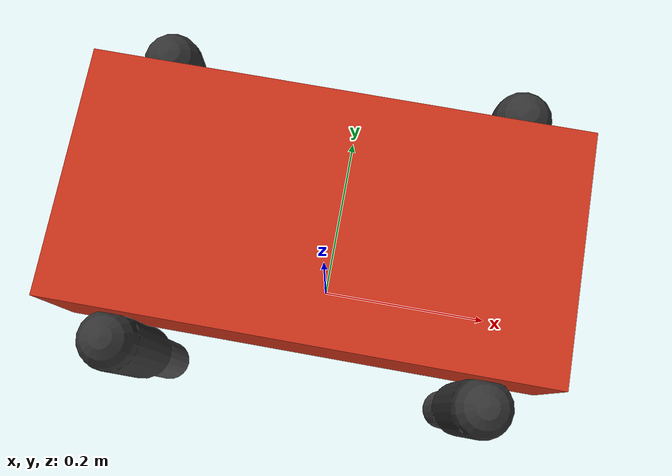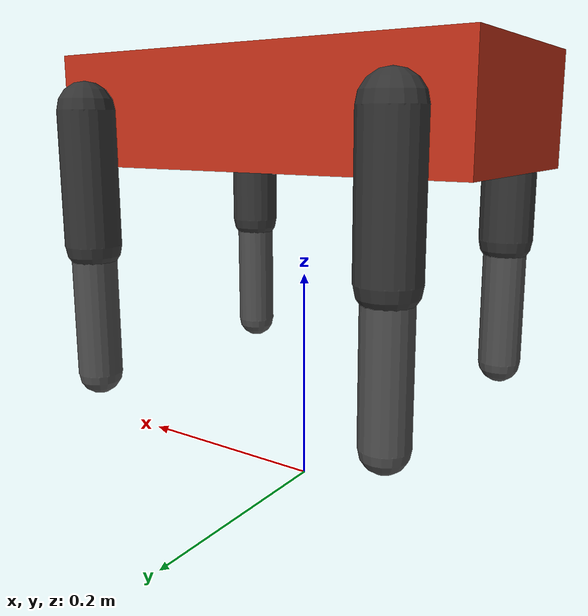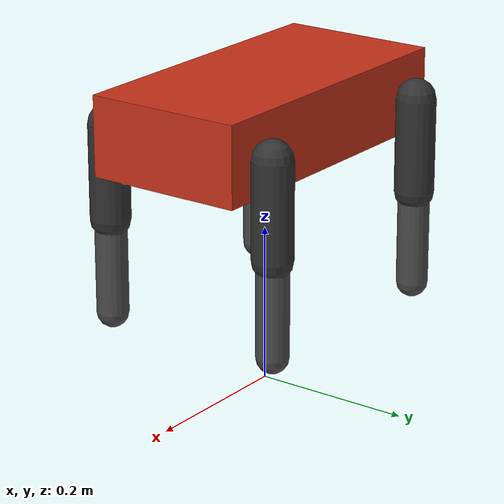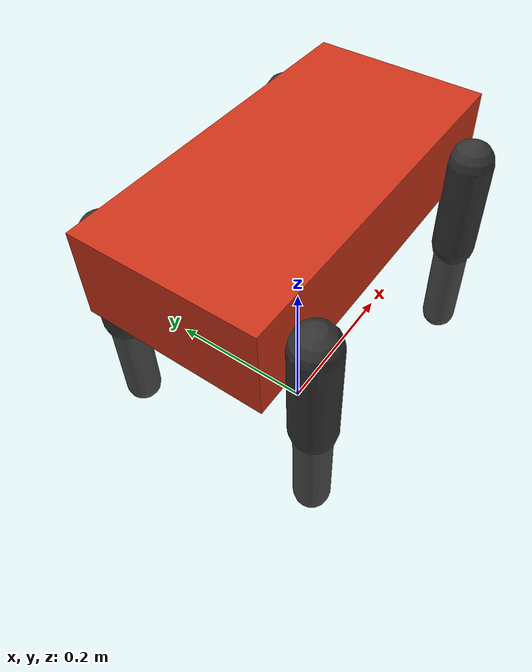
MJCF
<mujoco model="test_robot">
  <compiler angle="radian"/>

  <default>
    <joint armature="0.01" damping="0.5"/>
    <geom rgba="0.8 0.2 0.1 1" friction="1.0 0.005 0.0001"/>
    <motor gear="50" ctrlrange="-1 1"/>
  </default>

  <worldbody>
    <body name="torso" pos="0 0 0.35">
      <joint name="root" type="free"/>
      <geom name="torso_geom" type="box" size="0.2 0.1 0.05" mass="5"/>

      <!-- Front left leg -->
      <body name="fl_upper" pos="0.15 0.12 0">
        <joint name="fl_hip" type="hinge" axis="0 1 0" range="-0.8 0.8"/>
        <geom type="capsule" size="0.025" fromto="0 0 0 0 0 -0.12" rgba="0.2 0.2 0.2 1"/>
        <body name="fl_lower" pos="0 0 -0.12">
          <joint name="fl_knee" type="hinge" axis="0 1 0" range="-1.5 0.0"/>
          <geom type="capsule" size="0.02" fromto="0 0 0 0 0 -0.12" rgba="0.3 0.3 0.3 1"/>
        </body>
      </body>

      <!-- Front right leg -->
      <body name="fr_upper" pos="0.15 -0.12 0">
        <joint name="fr_hip" type="hinge" axis="0 1 0" range="-0.8 0.8"/>
        <geom type="capsule" size="0.025" fromto="0 0 0 0 0 -0.12" rgba="0.2 0.2 0.2 1"/>
        <body name="fr_lower" pos="0 0 -0.12">
          <joint name="fr_knee" type="hinge" axis="0 1 0" range="-1.5 0.0"/>
          <geom type="capsule" size="0.02" fromto="0 0 0 0 0 -0.12" rgba="0.3 0.3 0.3 1"/>
        </body>
      </body>

      <!-- Rear left leg -->
      <body name="rl_upper" pos="-0.15 0.12 0">
        <joint name="rl_hip" type="hinge" axis="0 1 0" range="-0.8 0.8"/>
        <geom type="capsule" size="0.025" fromto="0 0 0 0 0 -0.12" rgba="0.2 0.2 0.2 1"/>
        <body name="rl_lower" pos="0 0 -0.12">
          <joint name="rl_knee" type="hinge" axis="0 1 0" range="-1.5 0.0"/>
          <geom type="capsule" size="0.02" fromto="0 0 0 0 0 -0.12" rgba="0.3 0.3 0.3 1"/>
        </body>
      </body>

      <!-- Rear right leg -->
      <body name="rr_upper" pos="-0.15 -0.12 0">
        <joint name="rr_hip" type="hinge" axis="0 1 0" range="-0.8 0.8"/>
        <geom type="capsule" size="0.025" fromto="0 0 0 0 0 -0.12" rgba="0.2 0.2 0.2 1"/>
        <body name="rr_lower" pos="0 0 -0.12">
          <joint name="rr_knee" type="hinge" axis="0 1 0" range="-1.5 0.0"/>
          <geom type="capsule" size="0.02" fromto="0 0 0 0 0 -0.12" rgba="0.3 0.3 0.3 1"/>
        </body>
      </body>
    </body>
  </worldbody>

  <actuator>
    <motor name="fl_hip_motor" joint="fl_hip"/>
    <motor name="fl_knee_motor" joint="fl_knee"/>
    <motor name="fr_hip_motor" joint="fr_hip"/>
    <motor name="fr_knee_motor" joint="fr_knee"/>
    <motor name="rl_hip_motor" joint="rl_hip"/>
    <motor name="rl_knee_motor" joint="rl_knee"/>
    <motor name="rr_hip_motor" joint="rr_hip"/>
    <motor name="rr_knee_motor" joint="rr_knee"/>
  </actuator>
</mujoco>
